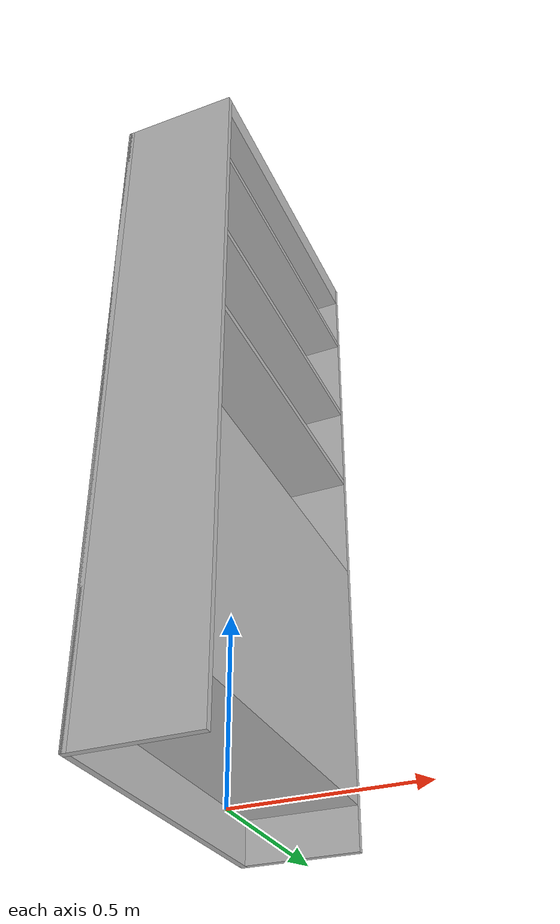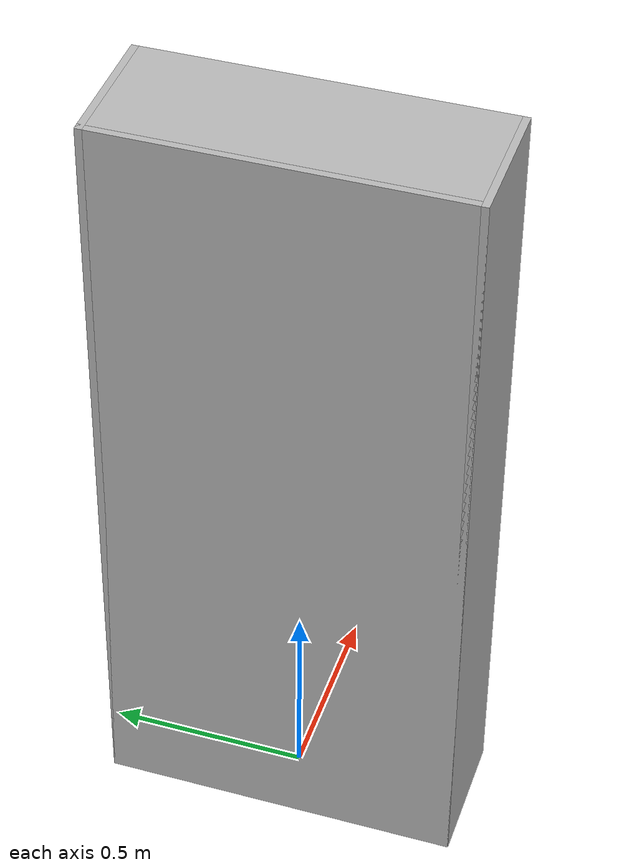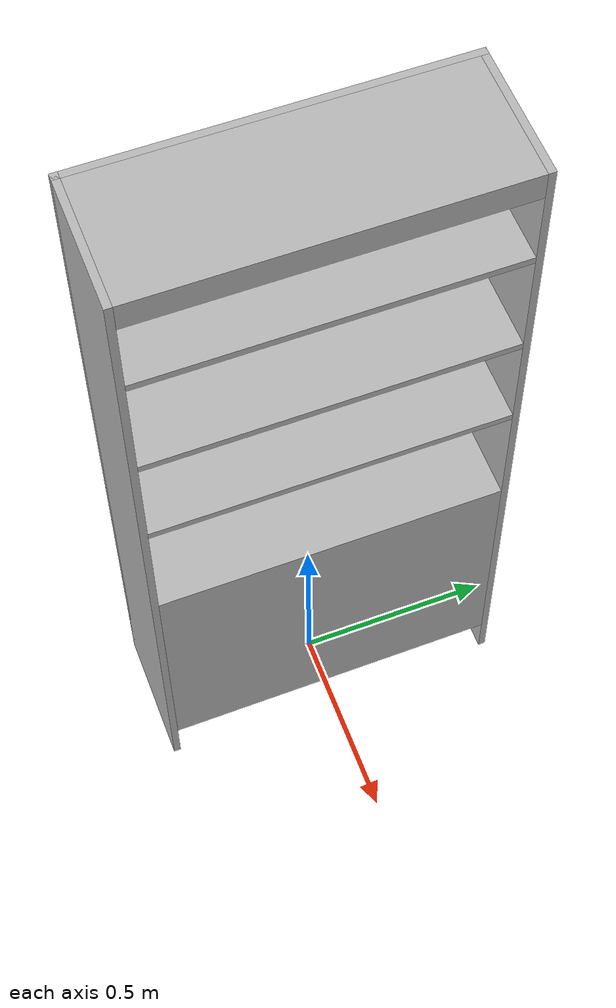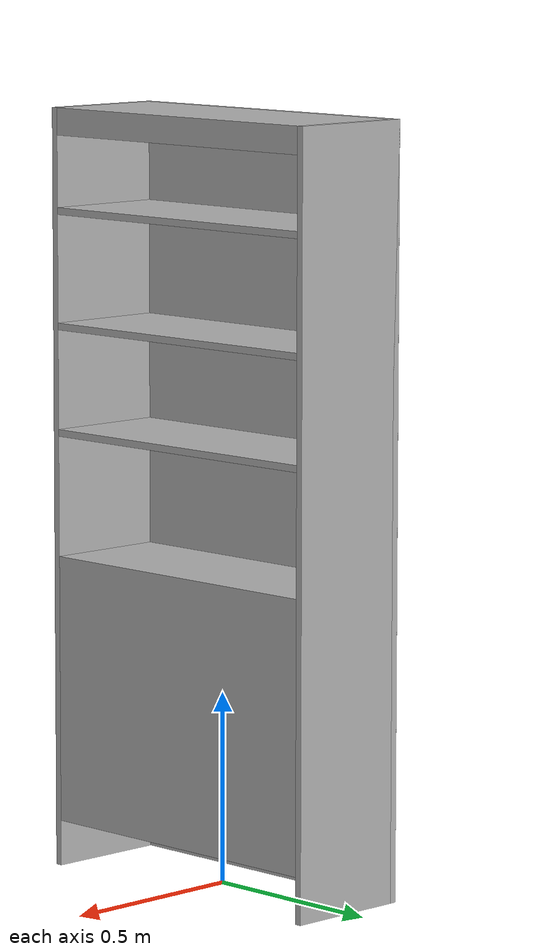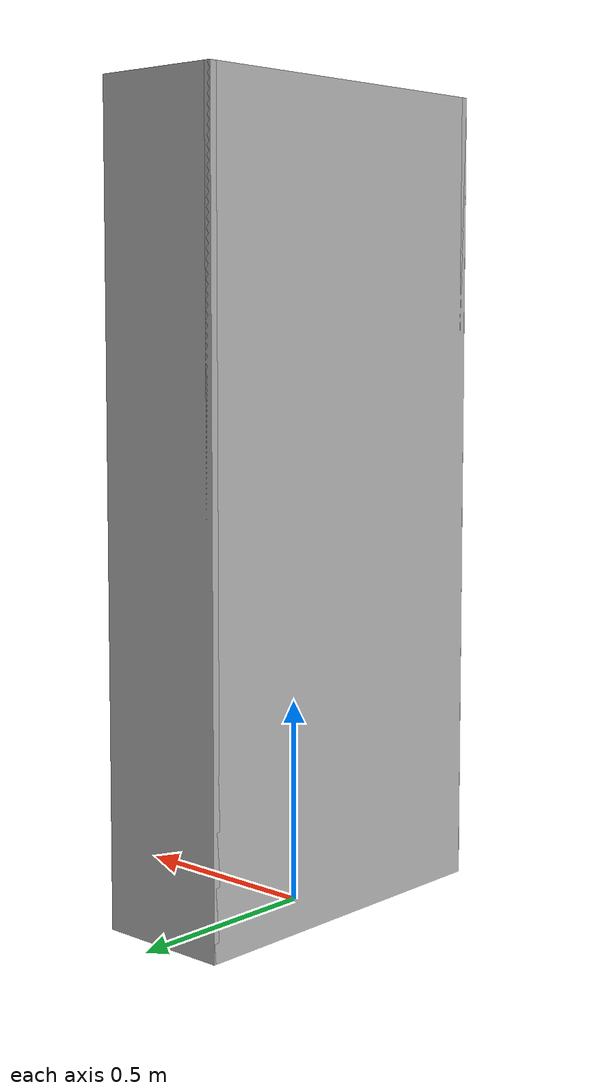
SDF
<?xml version="1.0"?>
<sdf version="1.6">
  <model name="rwc2019/kitchen_cabinet">
    <link name="1_link">
      <collision name="1_col">
        <geometry>
          <box>
            <size>0.34 0.018 1.98</size>
          </box>
        </geometry>
      </collision>
      <visual name="1_vis">
        <geometry>
          <box>
            <size>0.34 0.018 1.98</size>
          </box>
        </geometry>
      </visual>
      <pose>0.0 -0.441 0.99 0 0 0</pose>
    </link>
    <link name="2_link">
      <collision name="2_col">
        <geometry>
          <box>
            <size>0.34 0.018 1.98</size>
          </box>
        </geometry>
      </collision>
      <visual name="2_vis">
        <geometry>
          <box>
            <size>0.34 0.018 1.98</size>
          </box>
        </geometry>
      </visual>
      <pose>0.0 0.441 0.99 0 0 0</pose>
    </link>
    <link name="3_link">
      <collision name="3_col">
        <geometry>
          <box>
            <size>0.018 0.9 1.98</size>
          </box>
        </geometry>
      </collision>
      <visual name="3_vis">
        <geometry>
          <box>
            <size>0.018 0.9 1.98</size>
          </box>
        </geometry>
      </visual>
      <pose>-0.161 0.0 0.99 0 0 0</pose>
    </link>
    <link name="4_link">
      <collision name="4_col">
        <geometry>
          <box>
            <size>0.322 0.864 0.07</size>
          </box>
        </geometry>
      </collision>
      <visual name="4_vis">
        <geometry>
          <box>
            <size>0.322 0.864 0.07</size>
          </box>
        </geometry>
      </visual>
      <pose>0.009 0.0 1.945 0 0 0</pose>
    </link>
    <link name="5_link">
      <collision name="5_col">
        <geometry>
          <box>
            <size>0.322 0.864 0.7</size>
          </box>
        </geometry>
      </collision>
      <visual name="5_vis">
        <geometry>
          <box>
            <size>0.322 0.864 0.7</size>
          </box>
        </geometry>
      </visual>
      <pose>0.009 0.0 0.47 0 0 0</pose>
    </link>
    <link name="6_link">
      <collision name="6_col">
        <geometry>
          <box>
            <size>0.322 0.864 0.018</size>
          </box>
        </geometry>
      </collision>
      <visual name="6_vis">
        <geometry>
          <box>
            <size>0.322 0.864 0.018</size>
          </box>
        </geometry>
      </visual>
      <pose>0.009 0.0 1.143 0 0 0</pose>
    </link>
    <link name="7_link">
      <collision name="7_col">
        <geometry>
          <box>
            <size>0.322 0.864 0.018</size>
          </box>
        </geometry>
      </collision>
      <visual name="7_vis">
        <geometry>
          <box>
            <size>0.322 0.864 0.018</size>
          </box>
        </geometry>
      </visual>
      <pose>0.009 0.0 1.419 0 0 0</pose>
    </link>
    <link name="8_link">
      <collision name="8_col">
        <geometry>
          <box>
            <size>0.322 0.864 0.018</size>
          </box>
        </geometry>
      </collision>
      <visual name="8_vis">
        <geometry>
          <box>
            <size>0.322 0.864 0.018</size>
          </box>
        </geometry>
      </visual>
      <pose>0.009 0.0 1.716 0 0 0</pose>
    </link>
    <link name="in_front_of">
      <virtual_volume name="in_front_of_vv">
        <geometry>
          <box>
            <size>0.2 0.6 0.01</size>
          </box>
        </geometry>
        <pose>0.67 0.0 0.005 0 0 0</pose>
      </virtual_volume>
    </link>
    <link name="shelf1">
      <virtual_volume name="shelf1_vv">
        <geometry>
          <box>
            <size>0.282 0.804 0.25</size>
          </box>
        </geometry>
        <pose>0.029 0.0 0.965 0 0 0</pose>
      </virtual_volume>
    </link>
    <link name="shelf2">
      <virtual_volume name="shelf2_vv">
        <geometry>
          <box>
            <size>0.282 0.804 0.25</size>
          </box>
        </geometry>
        <pose>0.029 0.0 1.297 0 0 0</pose>
      </virtual_volume>
    </link>
    <link name="shelf3">
      <virtual_volume name="shelf3_vv">
        <geometry>
          <box>
            <size>0.282 0.804 0.25</size>
          </box>
        </geometry>
        <pose>0.029 0.0 1.573 0 0 0</pose>
      </virtual_volume>
      r
    </link>
    <link name="shelf4">
      <virtual_volume name="shelf4_vv">
        <geometry>
          <box>
            <size>0.282 0.804 0.17</size>
          </box>
        </geometry>
        <pose>0.029 0.0 1.82 0 0 0</pose>
      </virtual_volume>
    </link>
    <link name="on_top_of">
      <virtual_volume name="on_top_of_vv">
        <geometry>
          <box>
            <size>0.282 0.804 0.25</size>
          </box>
        </geometry>
        <pose>0.029 0.0 0.965 0 0 0</pose>
      </virtual_volume>
    </link>
    <static>true</static>
  </model>
</sdf>
